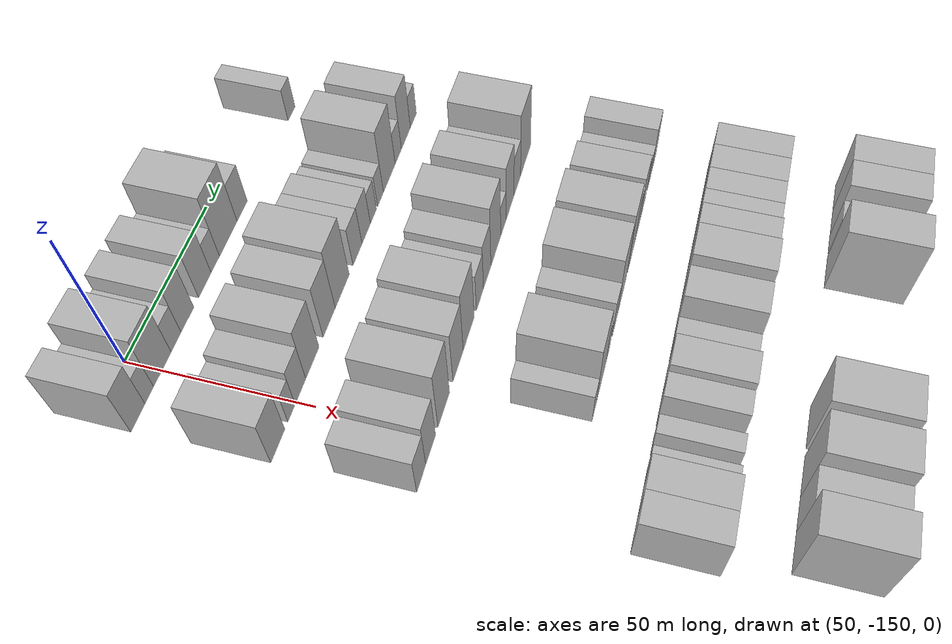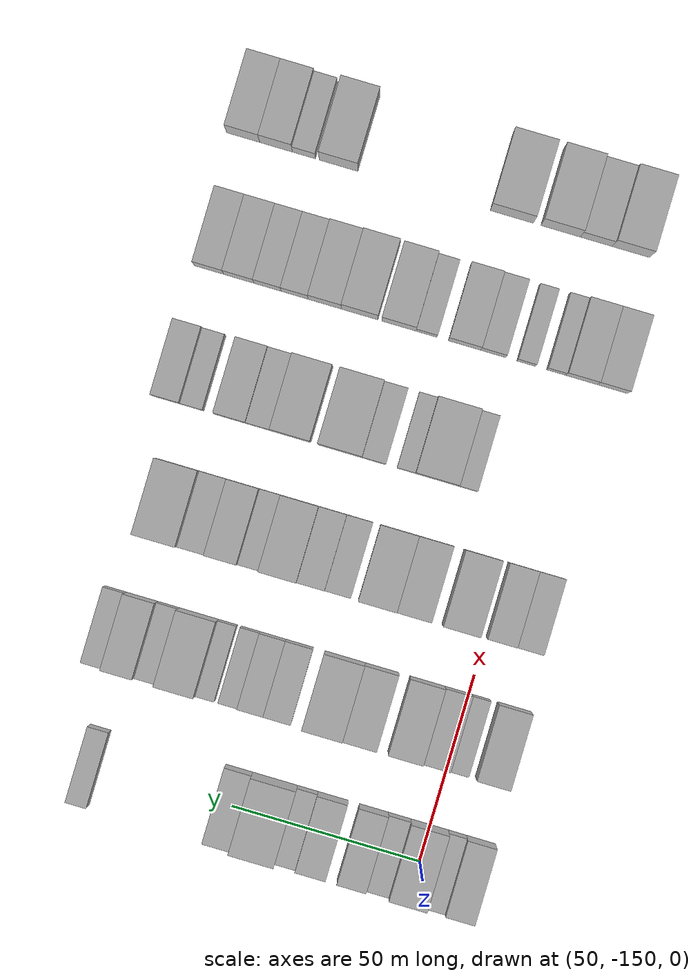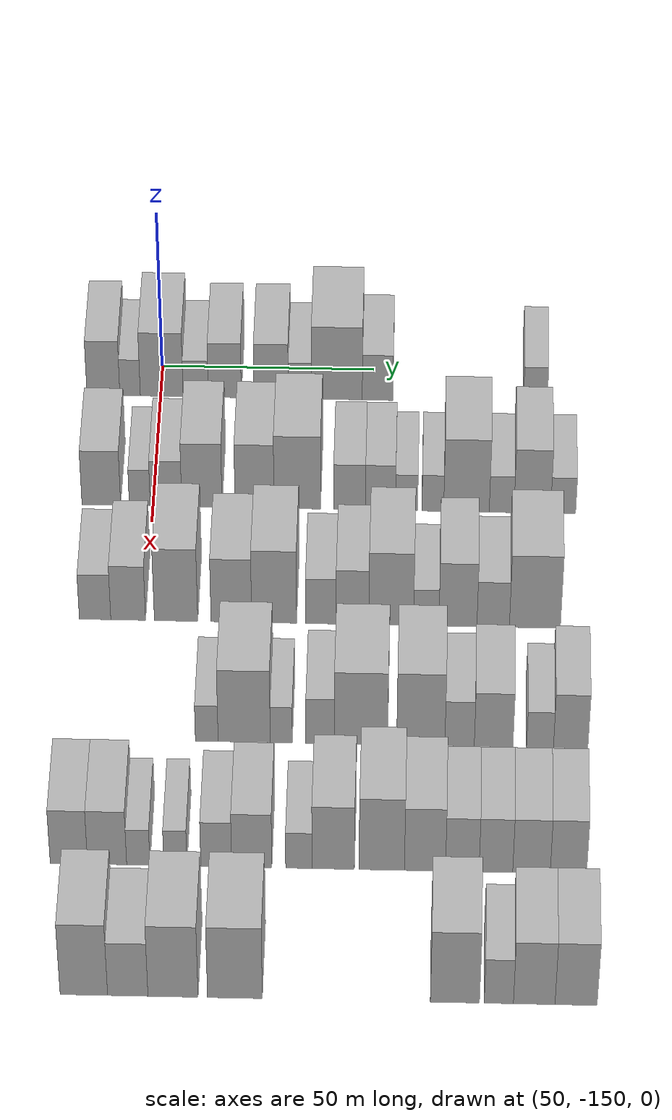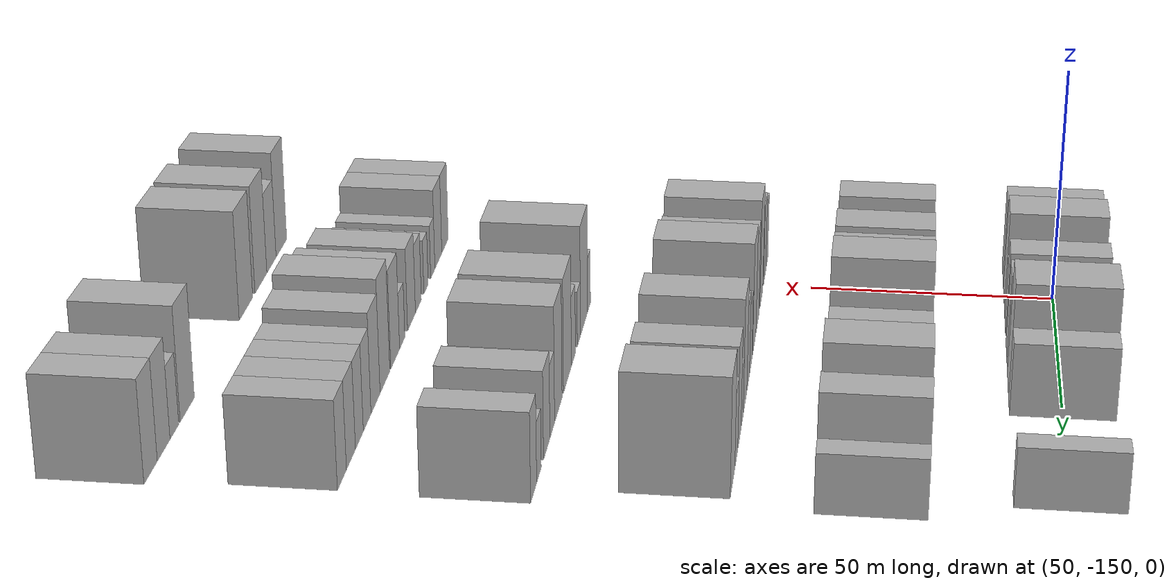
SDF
<sdf version="1.6">
 <world name="default">
  <model name="building_43">
   <static>1</static>
   <pose>50.0000 -163.3730 0 0.000000 0.000000 0.000000</pose>
   <link name="link">
    <pose>0 0 9.00 0 0 0</pose>
    <collision name="collision"><geometry><box><size>20.0000 7.7166 18.0000</size></box></geometry></collision>
    <visual name="visual">
     <cast_shadows>0</cast_shadows>
     <geometry><box><size>20.0000 7.7166 18.0000</size></box></geometry>
     <material>
      <script>
       <uri>model://HANNAS_wall/materials/scripts</uri>
       <uri>model://HANNAS_wall/materials/textures</uri>
       <name>vrc/HANNAS_wall</name>
      </script>
     </material>
    </visual>
   </link>
  </model>
  <model name="building_44">
   <static>1</static>
   <pose>50.0000 -157.1078 0 0.000000 0.000000 0.000000</pose>
   <link name="link">
    <pose>0 0 6.00 0 0 0</pose>
    <collision name="collision"><geometry><box><size>20.0000 4.8138 12.0000</size></box></geometry></collision>
    <visual name="visual">
     <cast_shadows>0</cast_shadows>
     <geometry><box><size>20.0000 4.8138 12.0000</size></box></geometry>
     <material>
      <script>
       <uri>model://HANNAS_wall/materials/scripts</uri>
       <uri>model://HANNAS_wall/materials/textures</uri>
       <name>vrc/HANNAS_wall</name>
      </script>
     </material>
    </visual>
   </link>
  </model>
  <model name="building_45">
   <static>1</static>
   <pose>50.0000 -149.6746 0 0.000000 0.000000 0.000000</pose>
   <link name="link">
    <pose>0 0 10.50 0 0 0</pose>
    <collision name="collision"><geometry><box><size>20.0000 10.0525 21.0000</size></box></geometry></collision>
    <visual name="visual">
     <cast_shadows>0</cast_shadows>
     <geometry><box><size>20.0000 10.0525 21.0000</size></box></geometry>
     <material>
      <script>
       <uri>model://HANNAS_wall/materials/scripts</uri>
       <uri>model://HANNAS_wall/materials/textures</uri>
       <name>vrc/HANNAS_wall</name>
      </script>
     </material>
    </visual>
   </link>
  </model>
  <model name="building_46">
   <static>1</static>
   <pose>50.0000 -141.6801 0 0.000000 0.000000 0.000000</pose>
   <link name="link">
    <pose>0 0 6.00 0 0 0</pose>
    <collision name="collision"><geometry><box><size>20.0000 5.9365 12.0000</size></box></geometry></collision>
    <visual name="visual">
     <cast_shadows>0</cast_shadows>
     <geometry><box><size>20.0000 5.9365 12.0000</size></box></geometry>
     <material>
      <script>
       <uri>model://HANNAS_wall/materials/scripts</uri>
       <uri>model://HANNAS_wall/materials/textures</uri>
       <name>vrc/HANNAS_wall</name>
      </script>
     </material>
    </visual>
   </link>
  </model>
  <model name="building_47">
   <static>1</static>
   <pose>50.0000 -134.8438 0 0.000000 0.000000 0.000000</pose>
   <link name="link">
    <pose>0 0 9.00 0 0 0</pose>
    <collision name="collision"><geometry><box><size>20.0000 7.7361 18.0000</size></box></geometry></collision>
    <visual name="visual">
     <cast_shadows>0</cast_shadows>
     <geometry><box><size>20.0000 7.7361 18.0000</size></box></geometry>
     <material>
      <script>
       <uri>model://HANNAS_wall/materials/scripts</uri>
       <uri>model://HANNAS_wall/materials/textures</uri>
       <name>vrc/HANNAS_wall</name>
      </script>
     </material>
    </visual>
   </link>
  </model>
  <model name="building_48">
   <static>1</static>
   <pose>50.0000 -123.9653 0 0.000000 0.000000 0.000000</pose>
   <link name="link">
    <pose>0 0 9.00 0 0 0</pose>
    <collision name="collision"><geometry><box><size>20.0000 8.0208 18.0000</size></box></geometry></collision>
    <visual name="visual">
     <cast_shadows>0</cast_shadows>
     <geometry><box><size>20.0000 8.0208 18.0000</size></box></geometry>
     <material>
      <script>
       <uri>model://HANNAS_wall/materials/scripts</uri>
       <uri>model://HANNAS_wall/materials/textures</uri>
       <name>vrc/HANNAS_wall</name>
      </script>
     </material>
    </visual>
   </link>
  </model>
  <model name="building_49">
   <static>1</static>
   <pose>50.0000 -117.2303 0 0.000000 0.000000 0.000000</pose>
   <link name="link">
    <pose>0 0 6.00 0 0 0</pose>
    <collision name="collision"><geometry><box><size>20.0000 5.4491 12.0000</size></box></geometry></collision>
    <visual name="visual">
     <cast_shadows>0</cast_shadows>
     <geometry><box><size>20.0000 5.4491 12.0000</size></box></geometry>
     <material>
      <script>
       <uri>model://HANNAS_wall/materials/scripts</uri>
       <uri>model://HANNAS_wall/materials/textures</uri>
       <name>vrc/HANNAS_wall</name>
      </script>
     </material>
    </visual>
   </link>
  </model>
  <model name="building_50">
   <static>1</static>
   <pose>50.0000 -108.5463 0 0.000000 0.000000 0.000000</pose>
   <link name="link">
    <pose>0 0 12.00 0 0 0</pose>
    <collision name="collision"><geometry><box><size>20.0000 11.9191 24.0000</size></box></geometry></collision>
    <visual name="visual">
     <cast_shadows>0</cast_shadows>
     <geometry><box><size>20.0000 11.9191 24.0000</size></box></geometry>
     <material>
      <script>
       <uri>model://HANNAS_wall/materials/scripts</uri>
       <uri>model://HANNAS_wall/materials/textures</uri>
       <name>vrc/HANNAS_wall</name>
      </script>
     </material>
    </visual>
   </link>
  </model>
  <model name="building_51">
   <static>1</static>
   <pose>50.0000 -98.9978 0 0.000000 0.000000 0.000000</pose>
   <link name="link">
    <pose>0 0 7.50 0 0 0</pose>
    <collision name="collision"><geometry><box><size>20.0000 7.1778 15.0000</size></box></geometry></collision>
    <visual name="visual">
     <cast_shadows>0</cast_shadows>
     <geometry><box><size>20.0000 7.1778 15.0000</size></box></geometry>
     <material>
      <script>
       <uri>model://HANNAS_wall/materials/scripts</uri>
       <uri>model://HANNAS_wall/materials/textures</uri>
       <name>vrc/HANNAS_wall</name>
      </script>
     </material>
    </visual>
   </link>
  </model>
  <model name="building_52">
   <static>1</static>
   <pose>50.0000 -62.0123 0 0.000000 0.000000 0.000000</pose>
   <link name="link">
    <pose>0 0 6.00 0 0 0</pose>
    <collision name="collision"><geometry><box><size>20.0000 5.5978 12.0000</size></box></geometry></collision>
    <visual name="visual">
     <cast_shadows>0</cast_shadows>
     <geometry><box><size>20.0000 5.5978 12.0000</size></box></geometry>
     <material>
      <script>
       <uri>model://HANNAS_wall/materials/scripts</uri>
       <uri>model://HANNAS_wall/materials/textures</uri>
       <name>vrc/HANNAS_wall</name>
      </script>
     </material>
    </visual>
   </link>
  </model>
  <model name="building_171">
   <static>1</static>
   <pose>85.0000 -161.8948 0 0.000000 0.000000 0.000000</pose>
   <link name="link">
    <pose>0 0 9.00 0 0 0</pose>
    <collision name="collision"><geometry><box><size>20.0000 8.8981 18.0000</size></box></geometry></collision>
    <visual name="visual">
     <cast_shadows>0</cast_shadows>
     <geometry><box><size>20.0000 8.8981 18.0000</size></box></geometry>
     <material>
      <script>
       <uri>model://HANNAS_wall/materials/scripts</uri>
       <uri>model://HANNAS_wall/materials/textures</uri>
       <name>vrc/HANNAS_wall</name>
      </script>
     </material>
    </visual>
   </link>
  </model>
  <model name="building_172">
   <static>1</static>
   <pose>85.0000 -153.0423 0 0.000000 0.000000 0.000000</pose>
   <link name="link">
    <pose>0 0 6.00 0 0 0</pose>
    <collision name="collision"><geometry><box><size>20.0000 4.8070 12.0000</size></box></geometry></collision>
    <visual name="visual">
     <cast_shadows>0</cast_shadows>
     <geometry><box><size>20.0000 4.8070 12.0000</size></box></geometry>
     <material>
      <script>
       <uri>model://HANNAS_wall/materials/scripts</uri>
       <uri>model://HANNAS_wall/materials/textures</uri>
       <name>vrc/HANNAS_wall</name>
      </script>
     </material>
    </visual>
   </link>
  </model>
  <model name="building_173">
   <static>1</static>
   <pose>85.0000 -147.0006 0 0.000000 0.000000 0.000000</pose>
   <link name="link">
    <pose>0 0 7.50 0 0 0</pose>
    <collision name="collision"><geometry><box><size>20.0000 7.2763 15.0000</size></box></geometry></collision>
    <visual name="visual">
     <cast_shadows>0</cast_shadows>
     <geometry><box><size>20.0000 7.2763 15.0000</size></box></geometry>
     <material>
      <script>
       <uri>model://HANNAS_wall/materials/scripts</uri>
       <uri>model://HANNAS_wall/materials/textures</uri>
       <name>vrc/HANNAS_wall</name>
      </script>
     </material>
    </visual>
   </link>
  </model>
  <model name="building_174">
   <static>1</static>
   <pose>85.0000 -138.7375 0 0.000000 0.000000 0.000000</pose>
   <link name="link">
    <pose>0 0 10.50 0 0 0</pose>
    <collision name="collision"><geometry><box><size>20.0000 9.2499 21.0000</size></box></geometry></collision>
    <visual name="visual">
     <cast_shadows>0</cast_shadows>
     <geometry><box><size>20.0000 9.2499 21.0000</size></box></geometry>
     <material>
      <script>
       <uri>model://HANNAS_wall/materials/scripts</uri>
       <uri>model://HANNAS_wall/materials/textures</uri>
       <name>vrc/HANNAS_wall</name>
      </script>
     </material>
    </visual>
   </link>
  </model>
  <model name="building_175">
   <static>1</static>
   <pose>85.0000 -126.6409 0 0.000000 0.000000 0.000000</pose>
   <link name="link">
    <pose>0 0 10.50 0 0 0</pose>
    <collision name="collision"><geometry><box><size>20.0000 8.9432 21.0000</size></box></geometry></collision>
    <visual name="visual">
     <cast_shadows>0</cast_shadows>
     <geometry><box><size>20.0000 8.9432 21.0000</size></box></geometry>
     <material>
      <script>
       <uri>model://HANNAS_wall/materials/scripts</uri>
       <uri>model://HANNAS_wall/materials/textures</uri>
       <name>vrc/HANNAS_wall</name>
      </script>
     </material>
    </visual>
   </link>
  </model>
  <model name="building_176">
   <static>1</static>
   <pose>85.0000 -116.8192 0 0.000000 0.000000 0.000000</pose>
   <link name="link">
    <pose>0 0 12.00 0 0 0</pose>
    <collision name="collision"><geometry><box><size>20.0000 10.7003 24.0000</size></box></geometry></collision>
    <visual name="visual">
     <cast_shadows>0</cast_shadows>
     <geometry><box><size>20.0000 10.7003 24.0000</size></box></geometry>
     <material>
      <script>
       <uri>model://HANNAS_wall/materials/scripts</uri>
       <uri>model://HANNAS_wall/materials/textures</uri>
       <name>vrc/HANNAS_wall</name>
      </script>
     </material>
    </visual>
   </link>
  </model>
  <model name="building_177">
   <static>1</static>
   <pose>85.0000 -104.8232 0 0.000000 0.000000 0.000000</pose>
   <link name="link">
    <pose>0 0 7.50 0 0 0</pose>
    <collision name="collision"><geometry><box><size>20.0000 7.2917 15.0000</size></box></geometry></collision>
    <visual name="visual">
     <cast_shadows>0</cast_shadows>
     <geometry><box><size>20.0000 7.2917 15.0000</size></box></geometry>
     <material>
      <script>
       <uri>model://HANNAS_wall/materials/scripts</uri>
       <uri>model://HANNAS_wall/materials/textures</uri>
       <name>vrc/HANNAS_wall</name>
      </script>
     </material>
    </visual>
   </link>
  </model>
  <model name="building_178">
   <static>1</static>
   <pose>85.0000 -97.7305 0 0.000000 0.000000 0.000000</pose>
   <link name="link">
    <pose>0 0 7.50 0 0 0</pose>
    <collision name="collision"><geometry><box><size>20.0000 6.8936 15.0000</size></box></geometry></collision>
    <visual name="visual">
     <cast_shadows>0</cast_shadows>
     <geometry><box><size>20.0000 6.8936 15.0000</size></box></geometry>
     <material>
      <script>
       <uri>model://HANNAS_wall/materials/scripts</uri>
       <uri>model://HANNAS_wall/materials/textures</uri>
       <name>vrc/HANNAS_wall</name>
      </script>
     </material>
    </visual>
   </link>
  </model>
  <model name="building_179">
   <static>1</static>
   <pose>85.0000 -91.7347 0 0.000000 0.000000 0.000000</pose>
   <link name="link">
    <pose>0 0 6.00 0 0 0</pose>
    <collision name="collision"><geometry><box><size>20.0000 5.0981 12.0000</size></box></geometry></collision>
    <visual name="visual">
     <cast_shadows>0</cast_shadows>
     <geometry><box><size>20.0000 5.0981 12.0000</size></box></geometry>
     <material>
      <script>
       <uri>model://HANNAS_wall/materials/scripts</uri>
       <uri>model://HANNAS_wall/materials/textures</uri>
       <name>vrc/HANNAS_wall</name>
      </script>
     </material>
    </visual>
   </link>
  </model>
  <model name="building_180">
   <static>1</static>
   <pose>85.0000 -85.6925 0 0.000000 0.000000 0.000000</pose>
   <link name="link">
    <pose>0 0 6.00 0 0 0</pose>
    <collision name="collision"><geometry><box><size>20.0000 4.9864 12.0000</size></box></geometry></collision>
    <visual name="visual">
     <cast_shadows>0</cast_shadows>
     <geometry><box><size>20.0000 4.9864 12.0000</size></box></geometry>
     <material>
      <script>
       <uri>model://HANNAS_wall/materials/scripts</uri>
       <uri>model://HANNAS_wall/materials/textures</uri>
       <name>vrc/HANNAS_wall</name>
      </script>
     </material>
    </visual>
   </link>
  </model>
  <model name="building_181">
   <static>1</static>
   <pose>85.0000 -77.9641 0 0.000000 0.000000 0.000000</pose>
   <link name="link">
    <pose>0 0 12.00 0 0 0</pose>
    <collision name="collision"><geometry><box><size>20.0000 10.4704 24.0000</size></box></geometry></collision>
    <visual name="visual">
     <cast_shadows>0</cast_shadows>
     <geometry><box><size>20.0000 10.4704 24.0000</size></box></geometry>
     <material>
      <script>
       <uri>model://HANNAS_wall/materials/scripts</uri>
       <uri>model://HANNAS_wall/materials/textures</uri>
       <name>vrc/HANNAS_wall</name>
      </script>
     </material>
    </visual>
   </link>
  </model>
  <model name="building_182">
   <static>1</static>
   <pose>85.0000 -69.8946 0 0.000000 0.000000 0.000000</pose>
   <link name="link">
    <pose>0 0 6.00 0 0 0</pose>
    <collision name="collision"><geometry><box><size>20.0000 5.6685 12.0000</size></box></geometry></collision>
    <visual name="visual">
     <cast_shadows>0</cast_shadows>
     <geometry><box><size>20.0000 5.6685 12.0000</size></box></geometry>
     <material>
      <script>
       <uri>model://HANNAS_wall/materials/scripts</uri>
       <uri>model://HANNAS_wall/materials/textures</uri>
       <name>vrc/HANNAS_wall</name>
      </script>
     </material>
    </visual>
   </link>
  </model>
  <model name="building_183">
   <static>1</static>
   <pose>85.0000 -62.8549 0 0.000000 0.000000 0.000000</pose>
   <link name="link">
    <pose>0 0 10.50 0 0 0</pose>
    <collision name="collision"><geometry><box><size>20.0000 8.4108 21.0000</size></box></geometry></collision>
    <visual name="visual">
     <cast_shadows>0</cast_shadows>
     <geometry><box><size>20.0000 8.4108 21.0000</size></box></geometry>
     <material>
      <script>
       <uri>model://HANNAS_wall/materials/scripts</uri>
       <uri>model://HANNAS_wall/materials/textures</uri>
       <name>vrc/HANNAS_wall</name>
      </script>
     </material>
    </visual>
   </link>
  </model>
  <model name="building_184">
   <static>1</static>
   <pose>85.0000 -55.7725 0 0.000000 0.000000 0.000000</pose>
   <link name="link">
    <pose>0 0 6.00 0 0 0</pose>
    <collision name="collision"><geometry><box><size>20.0000 5.7539 12.0000</size></box></geometry></collision>
    <visual name="visual">
     <cast_shadows>0</cast_shadows>
     <geometry><box><size>20.0000 5.7539 12.0000</size></box></geometry>
     <material>
      <script>
       <uri>model://HANNAS_wall/materials/scripts</uri>
       <uri>model://HANNAS_wall/materials/textures</uri>
       <name>vrc/HANNAS_wall</name>
      </script>
     </material>
    </visual>
   </link>
  </model>
  <model name="building_300">
   <static>1</static>
   <pose>120.0000 -161.3253 0 0.000000 0.000000 0.000000</pose>
   <link name="link">
    <pose>0 0 7.50 0 0 0</pose>
    <collision name="collision"><geometry><box><size>20.0000 7.0794 15.0000</size></box></geometry></collision>
    <visual name="visual">
     <cast_shadows>0</cast_shadows>
     <geometry><box><size>20.0000 7.0794 15.0000</size></box></geometry>
     <material>
      <script>
       <uri>model://HANNAS_wall/materials/scripts</uri>
       <uri>model://HANNAS_wall/materials/textures</uri>
       <name>vrc/HANNAS_wall</name>
      </script>
     </material>
    </visual>
   </link>
  </model>
  <model name="building_301">
   <static>1</static>
   <pose>120.0000 -153.8706 0 0.000000 0.000000 0.000000</pose>
   <link name="link">
    <pose>0 0 9.00 0 0 0</pose>
    <collision name="collision"><geometry><box><size>20.0000 7.8301 18.0000</size></box></geometry></collision>
    <visual name="visual">
     <cast_shadows>0</cast_shadows>
     <geometry><box><size>20.0000 7.8301 18.0000</size></box></geometry>
     <material>
      <script>
       <uri>model://HANNAS_wall/materials/scripts</uri>
       <uri>model://HANNAS_wall/materials/textures</uri>
       <name>vrc/HANNAS_wall</name>
      </script>
     </material>
    </visual>
   </link>
  </model>
  <model name="building_302">
   <static>1</static>
   <pose>120.0000 -143.0769 0 0.000000 0.000000 0.000000</pose>
   <link name="link">
    <pose>0 0 12.00 0 0 0</pose>
    <collision name="collision"><geometry><box><size>20.0000 9.7573 24.0000</size></box></geometry></collision>
    <visual name="visual">
     <cast_shadows>0</cast_shadows>
     <geometry><box><size>20.0000 9.7573 24.0000</size></box></geometry>
     <material>
      <script>
       <uri>model://HANNAS_wall/materials/scripts</uri>
       <uri>model://HANNAS_wall/materials/textures</uri>
       <name>vrc/HANNAS_wall</name>
      </script>
     </material>
    </visual>
   </link>
  </model>
  <model name="building_303">
   <static>1</static>
   <pose>120.0000 -130.6332 0 0.000000 0.000000 0.000000</pose>
   <link name="link">
    <pose>0 0 10.50 0 0 0</pose>
    <collision name="collision"><geometry><box><size>20.0000 9.1301 21.0000</size></box></geometry></collision>
    <visual name="visual">
     <cast_shadows>0</cast_shadows>
     <geometry><box><size>20.0000 9.1301 21.0000</size></box></geometry>
     <material>
      <script>
       <uri>model://HANNAS_wall/materials/scripts</uri>
       <uri>model://HANNAS_wall/materials/textures</uri>
       <name>vrc/HANNAS_wall</name>
      </script>
     </material>
    </visual>
   </link>
  </model>
  <model name="building_304">
   <static>1</static>
   <pose>120.0000 -121.0096 0 0.000000 0.000000 0.000000</pose>
   <link name="link">
    <pose>0 0 12.00 0 0 0</pose>
    <collision name="collision"><geometry><box><size>20.0000 10.1169 24.0000</size></box></geometry></collision>
    <visual name="visual">
     <cast_shadows>0</cast_shadows>
     <geometry><box><size>20.0000 10.1169 24.0000</size></box></geometry>
     <material>
      <script>
       <uri>model://HANNAS_wall/materials/scripts</uri>
       <uri>model://HANNAS_wall/materials/textures</uri>
       <name>vrc/HANNAS_wall</name>
      </script>
     </material>
    </visual>
   </link>
  </model>
  <model name="building_305">
   <static>1</static>
   <pose>120.0000 -110.5183 0 0.000000 0.000000 0.000000</pose>
   <link name="link">
    <pose>0 0 7.50 0 0 0</pose>
    <collision name="collision"><geometry><box><size>20.0000 6.8657 15.0000</size></box></geometry></collision>
    <visual name="visual">
     <cast_shadows>0</cast_shadows>
     <geometry><box><size>20.0000 6.8657 15.0000</size></box></geometry>
     <material>
      <script>
       <uri>model://HANNAS_wall/materials/scripts</uri>
       <uri>model://HANNAS_wall/materials/textures</uri>
       <name>vrc/HANNAS_wall</name>
      </script>
     </material>
    </visual>
   </link>
  </model>
  <model name="building_306">
   <static>1</static>
   <pose>120.0000 -103.4044 0 0.000000 0.000000 0.000000</pose>
   <link name="link">
    <pose>0 0 9.00 0 0 0</pose>
    <collision name="collision"><geometry><box><size>20.0000 7.3623 18.0000</size></box></geometry></collision>
    <visual name="visual">
     <cast_shadows>0</cast_shadows>
     <geometry><box><size>20.0000 7.3623 18.0000</size></box></geometry>
     <material>
      <script>
       <uri>model://HANNAS_wall/materials/scripts</uri>
       <uri>model://HANNAS_wall/materials/textures</uri>
       <name>vrc/HANNAS_wall</name>
      </script>
     </material>
    </visual>
   </link>
  </model>
  <model name="building_307">
   <static>1</static>
   <pose>120.0000 -94.7071 0 0.000000 0.000000 0.000000</pose>
   <link name="link">
    <pose>0 0 12.00 0 0 0</pose>
    <collision name="collision"><geometry><box><size>20.0000 10.0322 24.0000</size></box></geometry></collision>
    <visual name="visual">
     <cast_shadows>0</cast_shadows>
     <geometry><box><size>20.0000 10.0322 24.0000</size></box></geometry>
     <material>
      <script>
       <uri>model://HANNAS_wall/materials/scripts</uri>
       <uri>model://HANNAS_wall/materials/textures</uri>
       <name>vrc/HANNAS_wall</name>
      </script>
     </material>
    </visual>
   </link>
  </model>
  <model name="building_308">
   <static>1</static>
   <pose>120.0000 -86.8362 0 0.000000 0.000000 0.000000</pose>
   <link name="link">
    <pose>0 0 6.00 0 0 0</pose>
    <collision name="collision"><geometry><box><size>20.0000 5.7097 12.0000</size></box></geometry></collision>
    <visual name="visual">
     <cast_shadows>0</cast_shadows>
     <geometry><box><size>20.0000 5.7097 12.0000</size></box></geometry>
     <material>
      <script>
       <uri>model://HANNAS_wall/materials/scripts</uri>
       <uri>model://HANNAS_wall/materials/textures</uri>
       <name>vrc/HANNAS_wall</name>
      </script>
     </material>
    </visual>
   </link>
  </model>
  <model name="building_309">
   <static>1</static>
   <pose>120.0000 -79.7052 0 0.000000 0.000000 0.000000</pose>
   <link name="link">
    <pose>0 0 10.50 0 0 0</pose>
    <collision name="collision"><geometry><box><size>20.0000 8.5522 21.0000</size></box></geometry></collision>
    <visual name="visual">
     <cast_shadows>0</cast_shadows>
     <geometry><box><size>20.0000 8.5522 21.0000</size></box></geometry>
     <material>
      <script>
       <uri>model://HANNAS_wall/materials/scripts</uri>
       <uri>model://HANNAS_wall/materials/textures</uri>
       <name>vrc/HANNAS_wall</name>
      </script>
     </material>
    </visual>
   </link>
  </model>
  <model name="building_310">
   <static>1</static>
   <pose>120.0000 -71.7764 0 0.000000 0.000000 0.000000</pose>
   <link name="link">
    <pose>0 0 7.50 0 0 0</pose>
    <collision name="collision"><geometry><box><size>20.0000 7.3054 15.0000</size></box></geometry></collision>
    <visual name="visual">
     <cast_shadows>0</cast_shadows>
     <geometry><box><size>20.0000 7.3054 15.0000</size></box></geometry>
     <material>
      <script>
       <uri>model://HANNAS_wall/materials/scripts</uri>
       <uri>model://HANNAS_wall/materials/textures</uri>
       <name>vrc/HANNAS_wall</name>
      </script>
     </material>
    </visual>
   </link>
  </model>
  <model name="building_311">
   <static>1</static>
   <pose>120.0000 -62.4002 0 0.000000 0.000000 0.000000</pose>
   <link name="link">
    <pose>0 0 12.00 0 0 0</pose>
    <collision name="collision"><geometry><box><size>20.0000 11.4471 24.0000</size></box></geometry></collision>
    <visual name="visual">
     <cast_shadows>0</cast_shadows>
     <geometry><box><size>20.0000 11.4471 24.0000</size></box></geometry>
     <material>
      <script>
       <uri>model://HANNAS_wall/materials/scripts</uri>
       <uri>model://HANNAS_wall/materials/textures</uri>
       <name>vrc/HANNAS_wall</name>
      </script>
     </material>
    </visual>
   </link>
  </model>
  <model name="building_427">
   <static>1</static>
   <pose>155.0000 -134.7132 0 0.000000 0.000000 0.000000</pose>
   <link name="link">
    <pose>0 0 6.00 0 0 0</pose>
    <collision name="collision"><geometry><box><size>20.0000 5.0004 12.0000</size></box></geometry></collision>
    <visual name="visual">
     <cast_shadows>0</cast_shadows>
     <geometry><box><size>20.0000 5.0004 12.0000</size></box></geometry>
     <material>
      <script>
       <uri>model://HANNAS_wall/materials/scripts</uri>
       <uri>model://HANNAS_wall/materials/textures</uri>
       <name>vrc/HANNAS_wall</name>
      </script>
     </material>
    </visual>
   </link>
  </model>
  <model name="building_428">
   <static>1</static>
   <pose>155.0000 -126.4805 0 0.000000 0.000000 0.000000</pose>
   <link name="link">
    <pose>0 0 12.00 0 0 0</pose>
    <collision name="collision"><geometry><box><size>20.0000 11.4650 24.0000</size></box></geometry></collision>
    <visual name="visual">
     <cast_shadows>0</cast_shadows>
     <geometry><box><size>20.0000 11.4650 24.0000</size></box></geometry>
     <material>
      <script>
       <uri>model://HANNAS_wall/materials/scripts</uri>
       <uri>model://HANNAS_wall/materials/textures</uri>
       <name>vrc/HANNAS_wall</name>
      </script>
     </material>
    </visual>
   </link>
  </model>
  <model name="building_429">
   <static>1</static>
   <pose>155.0000 -118.3170 0 0.000000 0.000000 0.000000</pose>
   <link name="link">
    <pose>0 0 6.00 0 0 0</pose>
    <collision name="collision"><geometry><box><size>20.0000 4.8619 12.0000</size></box></geometry></collision>
    <visual name="visual">
     <cast_shadows>0</cast_shadows>
     <geometry><box><size>20.0000 4.8619 12.0000</size></box></geometry>
     <material>
      <script>
       <uri>model://HANNAS_wall/materials/scripts</uri>
       <uri>model://HANNAS_wall/materials/textures</uri>
       <name>vrc/HANNAS_wall</name>
      </script>
     </material>
    </visual>
   </link>
  </model>
  <model name="building_430">
   <static>1</static>
   <pose>155.0000 -109.7675 0 0.000000 0.000000 0.000000</pose>
   <link name="link">
    <pose>0 0 7.50 0 0 0</pose>
    <collision name="collision"><geometry><box><size>20.0000 6.2370 15.0000</size></box></geometry></collision>
    <visual name="visual">
     <cast_shadows>0</cast_shadows>
     <geometry><box><size>20.0000 6.2370 15.0000</size></box></geometry>
     <material>
      <script>
       <uri>model://HANNAS_wall/materials/scripts</uri>
       <uri>model://HANNAS_wall/materials/textures</uri>
       <name>vrc/HANNAS_wall</name>
      </script>
     </material>
    </visual>
   </link>
  </model>
  <model name="building_431">
   <static>1</static>
   <pose>155.0000 -100.7921 0 0.000000 0.000000 0.000000</pose>
   <link name="link">
    <pose>0 0 12.00 0 0 0</pose>
    <collision name="collision"><geometry><box><size>20.0000 11.7139 24.0000</size></box></geometry></collision>
    <visual name="visual">
     <cast_shadows>0</cast_shadows>
     <geometry><box><size>20.0000 11.7139 24.0000</size></box></geometry>
     <material>
      <script>
       <uri>model://HANNAS_wall/materials/scripts</uri>
       <uri>model://HANNAS_wall/materials/textures</uri>
       <name>vrc/HANNAS_wall</name>
      </script>
     </material>
    </visual>
   </link>
  </model>
  <model name="building_432">
   <static>1</static>
   <pose>155.0000 -87.6451 0 0.000000 0.000000 0.000000</pose>
   <link name="link">
    <pose>0 0 12.00 0 0 0</pose>
    <collision name="collision"><geometry><box><size>20.0000 10.5801 24.0000</size></box></geometry></collision>
    <visual name="visual">
     <cast_shadows>0</cast_shadows>
     <geometry><box><size>20.0000 10.5801 24.0000</size></box></geometry>
     <material>
      <script>
       <uri>model://HANNAS_wall/materials/scripts</uri>
       <uri>model://HANNAS_wall/materials/textures</uri>
       <name>vrc/HANNAS_wall</name>
      </script>
     </material>
    </visual>
   </link>
  </model>
  <model name="building_433">
   <static>1</static>
   <pose>155.0000 -79.1150 0 0.000000 0.000000 0.000000</pose>
   <link name="link">
    <pose>0 0 7.50 0 0 0</pose>
    <collision name="collision"><geometry><box><size>20.0000 6.4802 15.0000</size></box></geometry></collision>
    <visual name="visual">
     <cast_shadows>0</cast_shadows>
     <geometry><box><size>20.0000 6.4802 15.0000</size></box></geometry>
     <material>
      <script>
       <uri>model://HANNAS_wall/materials/scripts</uri>
       <uri>model://HANNAS_wall/materials/textures</uri>
       <name>vrc/HANNAS_wall</name>
      </script>
     </material>
    </visual>
   </link>
  </model>
  <model name="building_434">
   <static>1</static>
   <pose>155.0000 -71.6287 0 0.000000 0.000000 0.000000</pose>
   <link name="link">
    <pose>0 0 9.00 0 0 0</pose>
    <collision name="collision"><geometry><box><size>20.0000 8.4923 18.0000</size></box></geometry></collision>
    <visual name="visual">
     <cast_shadows>0</cast_shadows>
     <geometry><box><size>20.0000 8.4923 18.0000</size></box></geometry>
     <material>
      <script>
       <uri>model://HANNAS_wall/materials/scripts</uri>
       <uri>model://HANNAS_wall/materials/textures</uri>
       <name>vrc/HANNAS_wall</name>
      </script>
     </material>
    </visual>
   </link>
  </model>
  <model name="building_435">
   <static>1</static>
   <pose>155.0000 -61.4250 0 0.000000 0.000000 0.000000</pose>
   <link name="link">
    <pose>0 0 6.00 0 0 0</pose>
    <collision name="collision"><geometry><box><size>20.0000 5.9152 12.0000</size></box></geometry></collision>
    <visual name="visual">
     <cast_shadows>0</cast_shadows>
     <geometry><box><size>20.0000 5.9152 12.0000</size></box></geometry>
     <material>
      <script>
       <uri>model://HANNAS_wall/materials/scripts</uri>
       <uri>model://HANNAS_wall/materials/textures</uri>
       <name>vrc/HANNAS_wall</name>
      </script>
     </material>
    </visual>
   </link>
  </model>
  <model name="building_436">
   <static>1</static>
   <pose>155.0000 -54.6910 0 0.000000 0.000000 0.000000</pose>
   <link name="link">
    <pose>0 0 9.00 0 0 0</pose>
    <collision name="collision"><geometry><box><size>20.0000 7.5527 18.0000</size></box></geometry></collision>
    <visual name="visual">
     <cast_shadows>0</cast_shadows>
     <geometry><box><size>20.0000 7.5527 18.0000</size></box></geometry>
     <material>
      <script>
       <uri>model://HANNAS_wall/materials/scripts</uri>
       <uri>model://HANNAS_wall/materials/textures</uri>
       <name>vrc/HANNAS_wall</name>
      </script>
     </material>
    </visual>
   </link>
  </model>
  <model name="building_552">
   <static>1</static>
   <pose>190.0000 -162.9539 0 0.000000 0.000000 0.000000</pose>
   <link name="link">
    <pose>0 0 9.00 0 0 0</pose>
    <collision name="collision"><geometry><box><size>20.0000 8.0461 18.0000</size></box></geometry></collision>
    <visual name="visual">
     <cast_shadows>0</cast_shadows>
     <geometry><box><size>20.0000 8.0461 18.0000</size></box></geometry>
     <material>
      <script>
       <uri>model://HANNAS_wall/materials/scripts</uri>
       <uri>model://HANNAS_wall/materials/textures</uri>
       <name>vrc/HANNAS_wall</name>
      </script>
     </material>
    </visual>
   </link>
  </model>
  <model name="building_553">
   <static>1</static>
   <pose>190.0000 -154.7196 0 0.000000 0.000000 0.000000</pose>
   <link name="link">
    <pose>0 0 9.00 0 0 0</pose>
    <collision name="collision"><geometry><box><size>20.0000 8.4226 18.0000</size></box></geometry></collision>
    <visual name="visual">
     <cast_shadows>0</cast_shadows>
     <geometry><box><size>20.0000 8.4226 18.0000</size></box></geometry>
     <material>
      <script>
       <uri>model://HANNAS_wall/materials/scripts</uri>
       <uri>model://HANNAS_wall/materials/textures</uri>
       <name>vrc/HANNAS_wall</name>
      </script>
     </material>
    </visual>
   </link>
  </model>
  <model name="building_554">
   <static>1</static>
   <pose>190.0000 -148.0006 0 0.000000 0.000000 0.000000</pose>
   <link name="link">
    <pose>0 0 6.00 0 0 0</pose>
    <collision name="collision"><geometry><box><size>20.0000 5.0152 12.0000</size></box></geometry></collision>
    <visual name="visual">
     <cast_shadows>0</cast_shadows>
     <geometry><box><size>20.0000 5.0152 12.0000</size></box></geometry>
     <material>
      <script>
       <uri>model://HANNAS_wall/materials/scripts</uri>
       <uri>model://HANNAS_wall/materials/textures</uri>
       <name>vrc/HANNAS_wall</name>
      </script>
     </material>
    </visual>
   </link>
  </model>
  <model name="building_555">
   <static>1</static>
   <pose>190.0000 -140.0094 0 0.000000 0.000000 0.000000</pose>
   <link name="link">
    <pose>0 0 6.00 0 0 0</pose>
    <collision name="collision"><geometry><box><size>20.0000 4.9673 12.0000</size></box></geometry></collision>
    <visual name="visual">
     <cast_shadows>0</cast_shadows>
     <geometry><box><size>20.0000 4.9673 12.0000</size></box></geometry>
     <material>
      <script>
       <uri>model://HANNAS_wall/materials/scripts</uri>
       <uri>model://HANNAS_wall/materials/textures</uri>
       <name>vrc/HANNAS_wall</name>
      </script>
     </material>
    </visual>
   </link>
  </model>
  <model name="building_556">
   <static>1</static>
   <pose>190.0000 -131.2077 0 0.000000 0.000000 0.000000</pose>
   <link name="link">
    <pose>0 0 7.50 0 0 0</pose>
    <collision name="collision"><geometry><box><size>20.0000 6.6359 15.0000</size></box></geometry></collision>
    <visual name="visual">
     <cast_shadows>0</cast_shadows>
     <geometry><box><size>20.0000 6.6359 15.0000</size></box></geometry>
     <material>
      <script>
       <uri>model://HANNAS_wall/materials/scripts</uri>
       <uri>model://HANNAS_wall/materials/textures</uri>
       <name>vrc/HANNAS_wall</name>
      </script>
     </material>
    </visual>
   </link>
  </model>
  <model name="building_557">
   <static>1</static>
   <pose>190.0000 -123.5775 0 0.000000 0.000000 0.000000</pose>
   <link name="link">
    <pose>0 0 9.00 0 0 0</pose>
    <collision name="collision"><geometry><box><size>20.0000 8.6245 18.0000</size></box></geometry></collision>
    <visual name="visual">
     <cast_shadows>0</cast_shadows>
     <geometry><box><size>20.0000 8.6245 18.0000</size></box></geometry>
     <material>
      <script>
       <uri>model://HANNAS_wall/materials/scripts</uri>
       <uri>model://HANNAS_wall/materials/textures</uri>
       <name>vrc/HANNAS_wall</name>
      </script>
     </material>
    </visual>
   </link>
  </model>
  <model name="building_558">
   <static>1</static>
   <pose>190.0000 -113.4510 0 0.000000 0.000000 0.000000</pose>
   <link name="link">
    <pose>0 0 6.00 0 0 0</pose>
    <collision name="collision"><geometry><box><size>20.0000 5.6285 12.0000</size></box></geometry></collision>
    <visual name="visual">
     <cast_shadows>0</cast_shadows>
     <geometry><box><size>20.0000 5.6285 12.0000</size></box></geometry>
     <material>
      <script>
       <uri>model://HANNAS_wall/materials/scripts</uri>
       <uri>model://HANNAS_wall/materials/textures</uri>
       <name>vrc/HANNAS_wall</name>
      </script>
     </material>
    </visual>
   </link>
  </model>
  <model name="building_559">
   <static>1</static>
   <pose>190.0000 -106.0660 0 0.000000 0.000000 0.000000</pose>
   <link name="link">
    <pose>0 0 10.50 0 0 0</pose>
    <collision name="collision"><geometry><box><size>20.0000 9.1414 21.0000</size></box></geometry></collision>
    <visual name="visual">
     <cast_shadows>0</cast_shadows>
     <geometry><box><size>20.0000 9.1414 21.0000</size></box></geometry>
     <material>
      <script>
       <uri>model://HANNAS_wall/materials/scripts</uri>
       <uri>model://HANNAS_wall/materials/textures</uri>
       <name>vrc/HANNAS_wall</name>
      </script>
     </material>
    </visual>
   </link>
  </model>
  <model name="building_560">
   <static>1</static>
   <pose>190.0000 -95.6230 0 0.000000 0.000000 0.000000</pose>
   <link name="link">
    <pose>0 0 12.00 0 0 0</pose>
    <collision name="collision"><geometry><box><size>20.0000 9.7446 24.0000</size></box></geometry></collision>
    <visual name="visual">
     <cast_shadows>0</cast_shadows>
     <geometry><box><size>20.0000 9.7446 24.0000</size></box></geometry>
     <material>
      <script>
       <uri>model://HANNAS_wall/materials/scripts</uri>
       <uri>model://HANNAS_wall/materials/textures</uri>
       <name>vrc/HANNAS_wall</name>
      </script>
     </material>
    </visual>
   </link>
  </model>
  <model name="building_561">
   <static>1</static>
   <pose>190.0000 -86.3442 0 0.000000 0.000000 0.000000</pose>
   <link name="link">
    <pose>0 0 10.50 0 0 0</pose>
    <collision name="collision"><geometry><box><size>20.0000 8.8130 21.0000</size></box></geometry></collision>
    <visual name="visual">
     <cast_shadows>0</cast_shadows>
     <geometry><box><size>20.0000 8.8130 21.0000</size></box></geometry>
     <material>
      <script>
       <uri>model://HANNAS_wall/materials/scripts</uri>
       <uri>model://HANNAS_wall/materials/textures</uri>
       <name>vrc/HANNAS_wall</name>
      </script>
     </material>
    </visual>
   </link>
  </model>
  <model name="building_562">
   <static>1</static>
   <pose>190.0000 -78.3263 0 0.000000 0.000000 0.000000</pose>
   <link name="link">
    <pose>0 0 9.00 0 0 0</pose>
    <collision name="collision"><geometry><box><size>20.0000 7.2228 18.0000</size></box></geometry></collision>
    <visual name="visual">
     <cast_shadows>0</cast_shadows>
     <geometry><box><size>20.0000 7.2228 18.0000</size></box></geometry>
     <material>
      <script>
       <uri>model://HANNAS_wall/materials/scripts</uri>
       <uri>model://HANNAS_wall/materials/textures</uri>
       <name>vrc/HANNAS_wall</name>
      </script>
     </material>
    </visual>
   </link>
  </model>
  <model name="building_563">
   <static>1</static>
   <pose>190.0000 -71.0896 0 0.000000 0.000000 0.000000</pose>
   <link name="link">
    <pose>0 0 9.00 0 0 0</pose>
    <collision name="collision"><geometry><box><size>20.0000 7.2507 18.0000</size></box></geometry></collision>
    <visual name="visual">
     <cast_shadows>0</cast_shadows>
     <geometry><box><size>20.0000 7.2507 18.0000</size></box></geometry>
     <material>
      <script>
       <uri>model://HANNAS_wall/materials/scripts</uri>
       <uri>model://HANNAS_wall/materials/textures</uri>
       <name>vrc/HANNAS_wall</name>
      </script>
     </material>
    </visual>
   </link>
  </model>
  <model name="building_564">
   <static>1</static>
   <pose>190.0000 -63.4327 0 0.000000 0.000000 0.000000</pose>
   <link name="link">
    <pose>0 0 9.00 0 0 0</pose>
    <collision name="collision"><geometry><box><size>20.0000 8.0632 18.0000</size></box></geometry></collision>
    <visual name="visual">
     <cast_shadows>0</cast_shadows>
     <geometry><box><size>20.0000 8.0632 18.0000</size></box></geometry>
     <material>
      <script>
       <uri>model://HANNAS_wall/materials/scripts</uri>
       <uri>model://HANNAS_wall/materials/textures</uri>
       <name>vrc/HANNAS_wall</name>
      </script>
     </material>
    </visual>
   </link>
  </model>
  <model name="building_565">
   <static>1</static>
   <pose>190.0000 -55.4965 0 0.000000 0.000000 0.000000</pose>
   <link name="link">
    <pose>0 0 9.00 0 0 0</pose>
    <collision name="collision"><geometry><box><size>20.0000 7.8091 18.0000</size></box></geometry></collision>
    <visual name="visual">
     <cast_shadows>0</cast_shadows>
     <geometry><box><size>20.0000 7.8091 18.0000</size></box></geometry>
     <material>
      <script>
       <uri>model://HANNAS_wall/materials/scripts</uri>
       <uri>model://HANNAS_wall/materials/textures</uri>
       <name>vrc/HANNAS_wall</name>
      </script>
     </material>
    </visual>
   </link>
  </model>
  <model name="building_676">
   <static>1</static>
   <pose>225.0000 -157.6757 0 0.000000 0.000000 0.000000</pose>
   <link name="link">
    <pose>0 0 12.00 0 0 0</pose>
    <collision name="collision"><geometry><box><size>20.0000 9.9943 24.0000</size></box></geometry></collision>
    <visual name="visual">
     <cast_shadows>0</cast_shadows>
     <geometry><box><size>20.0000 9.9943 24.0000</size></box></geometry>
     <material>
      <script>
       <uri>model://HANNAS_wall/materials/scripts</uri>
       <uri>model://HANNAS_wall/materials/textures</uri>
       <name>vrc/HANNAS_wall</name>
      </script>
     </material>
    </visual>
   </link>
  </model>
  <model name="building_677">
   <static>1</static>
   <pose>225.0000 -148.4328 0 0.000000 0.000000 0.000000</pose>
   <link name="link">
    <pose>0 0 9.00 0 0 0</pose>
    <collision name="collision"><geometry><box><size>20.0000 8.4915 18.0000</size></box></geometry></collision>
    <visual name="visual">
     <cast_shadows>0</cast_shadows>
     <geometry><box><size>20.0000 8.4915 18.0000</size></box></geometry>
     <material>
      <script>
       <uri>model://HANNAS_wall/materials/scripts</uri>
       <uri>model://HANNAS_wall/materials/textures</uri>
       <name>vrc/HANNAS_wall</name>
      </script>
     </material>
    </visual>
   </link>
  </model>
  <model name="building_678">
   <static>1</static>
   <pose>225.0000 -138.9140 0 0.000000 0.000000 0.000000</pose>
   <link name="link">
    <pose>0 0 12.00 0 0 0</pose>
    <collision name="collision"><geometry><box><size>20.0000 10.5461 24.0000</size></box></geometry></collision>
    <visual name="visual">
     <cast_shadows>0</cast_shadows>
     <geometry><box><size>20.0000 10.5461 24.0000</size></box></geometry>
     <material>
      <script>
       <uri>model://HANNAS_wall/materials/scripts</uri>
       <uri>model://HANNAS_wall/materials/textures</uri>
       <name>vrc/HANNAS_wall</name>
      </script>
     </material>
    </visual>
   </link>
  </model>
  <model name="building_679">
   <static>1</static>
   <pose>225.0000 -125.8824 0 0.000000 0.000000 0.000000</pose>
   <link name="link">
    <pose>0 0 12.00 0 0 0</pose>
    <collision name="collision"><geometry><box><size>20.0000 11.5171 24.0000</size></box></geometry></collision>
    <visual name="visual">
     <cast_shadows>0</cast_shadows>
     <geometry><box><size>20.0000 11.5171 24.0000</size></box></geometry>
     <material>
      <script>
       <uri>model://HANNAS_wall/materials/scripts</uri>
       <uri>model://HANNAS_wall/materials/textures</uri>
       <name>vrc/HANNAS_wall</name>
      </script>
     </material>
    </visual>
   </link>
  </model>
  <model name="building_680">
   <static>1</static>
   <pose>225.0000 -79.6469 0 0.000000 0.000000 0.000000</pose>
   <link name="link">
    <pose>0 0 12.00 0 0 0</pose>
    <collision name="collision"><geometry><box><size>20.0000 10.3180 24.0000</size></box></geometry></collision>
    <visual name="visual">
     <cast_shadows>0</cast_shadows>
     <geometry><box><size>20.0000 10.3180 24.0000</size></box></geometry>
     <material>
      <script>
       <uri>model://HANNAS_wall/materials/scripts</uri>
       <uri>model://HANNAS_wall/materials/textures</uri>
       <name>vrc/HANNAS_wall</name>
      </script>
     </material>
    </visual>
   </link>
  </model>
  <model name="building_681">
   <static>1</static>
   <pose>225.0000 -70.4204 0 0.000000 0.000000 0.000000</pose>
   <link name="link">
    <pose>0 0 7.50 0 0 0</pose>
    <collision name="collision"><geometry><box><size>20.0000 6.1351 15.0000</size></box></geometry></collision>
    <visual name="visual">
     <cast_shadows>0</cast_shadows>
     <geometry><box><size>20.0000 6.1351 15.0000</size></box></geometry>
     <material>
      <script>
       <uri>model://HANNAS_wall/materials/scripts</uri>
       <uri>model://HANNAS_wall/materials/textures</uri>
       <name>vrc/HANNAS_wall</name>
      </script>
     </material>
    </visual>
   </link>
  </model>
  <model name="building_682">
   <static>1</static>
   <pose>225.0000 -62.9881 0 0.000000 0.000000 0.000000</pose>
   <link name="link">
    <pose>0 0 10.50 0 0 0</pose>
    <collision name="collision"><geometry><box><size>20.0000 8.7294 21.0000</size></box></geometry></collision>
    <visual name="visual">
     <cast_shadows>0</cast_shadows>
     <geometry><box><size>20.0000 8.7294 21.0000</size></box></geometry>
     <material>
      <script>
       <uri>model://HANNAS_wall/materials/scripts</uri>
       <uri>model://HANNAS_wall/materials/textures</uri>
       <name>vrc/HANNAS_wall</name>
      </script>
     </material>
    </visual>
   </link>
  </model>
  <model name="building_683">
   <static>1</static>
   <pose>225.0000 -54.2085 0 0.000000 0.000000 0.000000</pose>
   <link name="link">
    <pose>0 0 10.50 0 0 0</pose>
    <collision name="collision"><geometry><box><size>20.0000 8.8299 21.0000</size></box></geometry></collision>
    <visual name="visual">
     <cast_shadows>0</cast_shadows>
     <geometry><box><size>20.0000 8.8299 21.0000</size></box></geometry>
     <material>
      <script>
       <uri>model://HANNAS_wall/materials/scripts</uri>
       <uri>model://HANNAS_wall/materials/textures</uri>
       <name>vrc/HANNAS_wall</name>
      </script>
     </material>
    </visual>
   </link>
  </model>
 </world>
</sdf>
